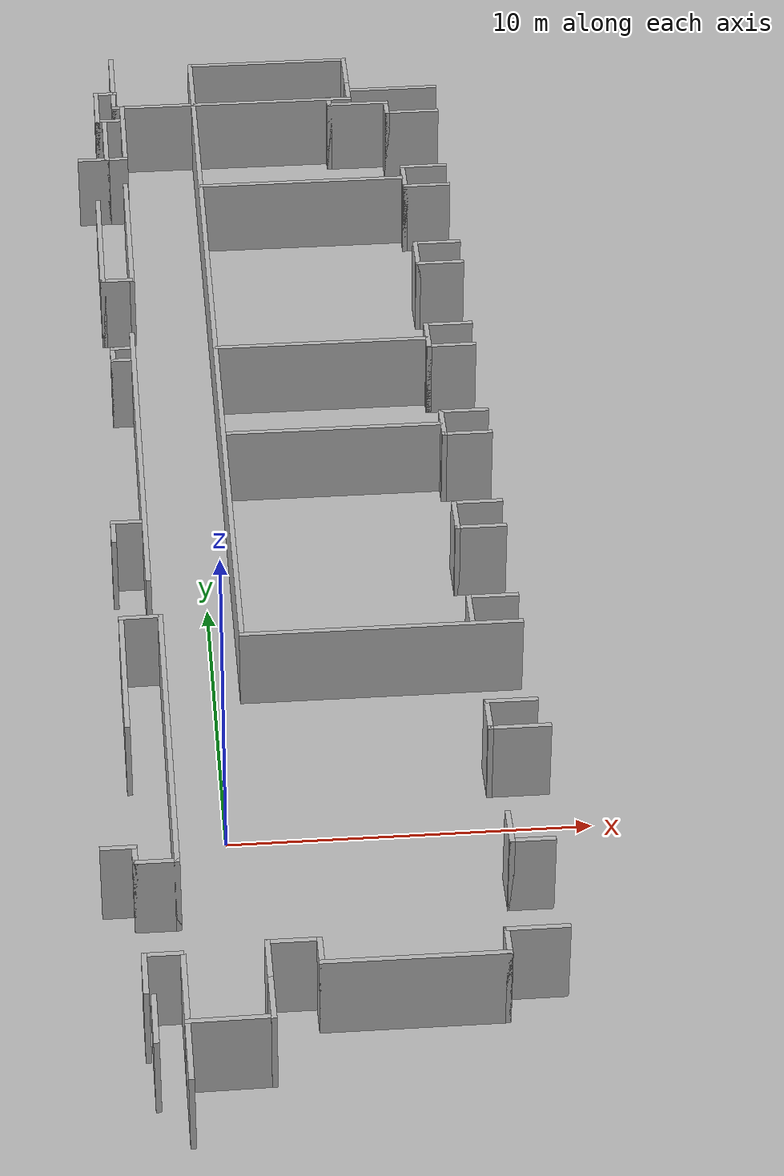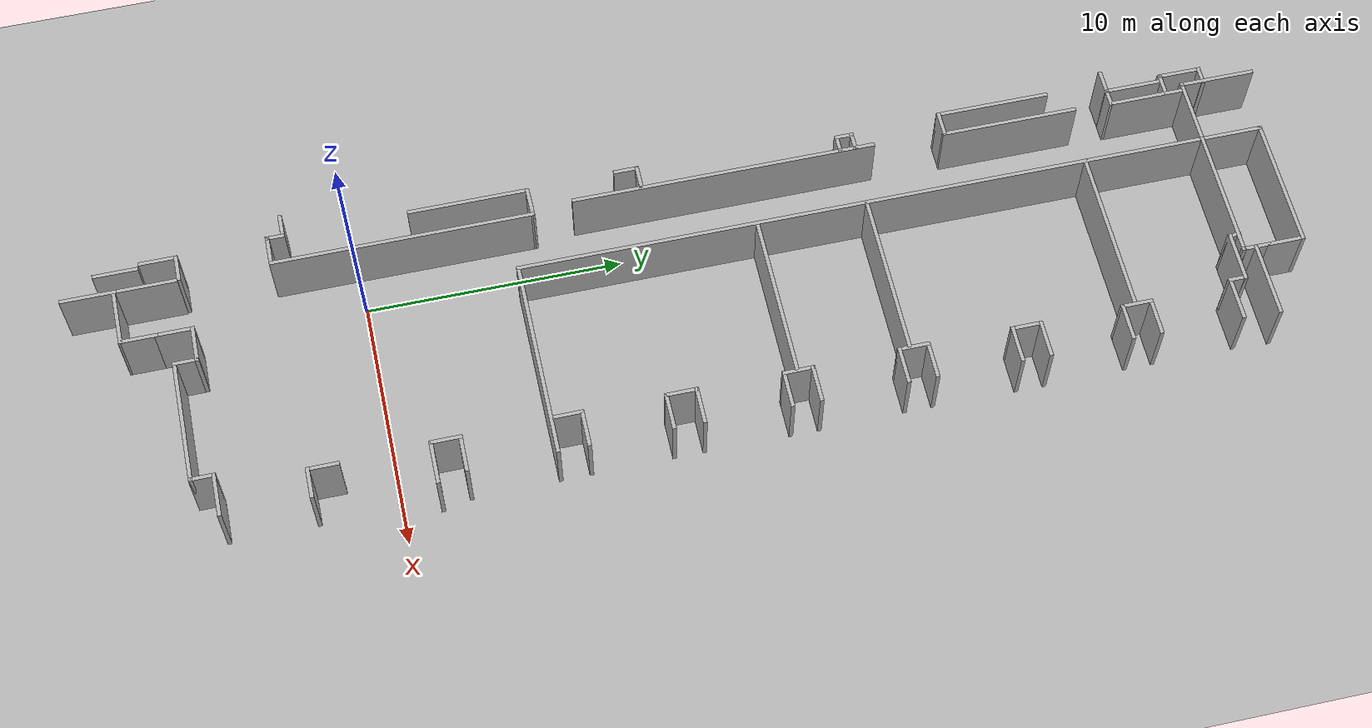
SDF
<sdf version="1.9">
 <world name="tsudanuma2-3">
  <model name="ground_plane">
   <static>true</static>
   <link name="link">
    <collision name="collision">
     <geometry><plane><normal>0 0 1</normal><size>100 100</size></plane></geometry>
     <surface>
      <contact><collide_bitmask>65535</collide_bitmask></contact>
      <friction><ode><mu>100</mu><mu2>50</mu2></ode></friction>
     </surface>
    </collision>
    <visual name="visual">
     <cast_shadows>false</cast_shadows>
     <geometry><plane><normal>0 0 1</normal><size>100 100</size></plane></geometry>
     <material>
      <ambient>0.5 0.5 0.5 1</ambient>
      <diffuse>0.7 0.7 0.7 1</diffuse>
      <specular>0.1 0.1 0.1 1</specular>
     </material>
    </visual>
   </link>
  </model>
  <model name="Tsudanuma_2-3-without_door">
   <pose>11.859500000000001 12.3796 0 0 0 0</pose>
   <link name="Wall_108">
    <collision name="Wall_108_Collision">
     <geometry><box><size>4.5 0.14999999999999999 2.5</size></box></geometry>
     <pose>0 0 1.25 0 0 0</pose>
    </collision>
    <visual name="Wall_108_Visual">
     <pose>0 0 1.25 0 0 0</pose>
     <geometry><box><size>4.5 0.14999999999999999 2.5</size></box></geometry>
     <material>
      <ambient>0.5 0.5 0.5 1</ambient>
      <diffuse>0.7 0.7 0.7 1</diffuse>
      <specular>0.1 0.1 0.1 1</specular>
     </material>
     <meta><layer>0</layer></meta>
    </visual>
    <pose>-14.370799999999999 13.091699999999999 0 0 0 -1.5708</pose>
   </link>
   <link name="Wall_109">
    <collision name="Wall_109_Collision">
     <geometry><box><size>1 0.14999999999999999 2.5</size></box></geometry>
     <pose>0 0 1.25 0 0 0</pose>
    </collision>
    <visual name="Wall_109_Visual">
     <pose>0 0 1.25 0 0 0</pose>
     <geometry><box><size>1 0.14999999999999999 2.5</size></box></geometry>
     <material>
      <ambient>0.5 0.5 0.5 1</ambient>
      <diffuse>0.7 0.7 0.7 1</diffuse>
      <specular>0.1 0.1 0.1 1</specular>
     </material>
     <meta><layer>0</layer></meta>
    </visual>
    <pose>-13.9458 10.916700000000001 0 0 0 0</pose>
   </link>
   <link name="Wall_112">
    <collision name="Wall_112_Collision">
     <geometry><box><size>5.4000000000000004 0.14999999999999999 2.5</size></box></geometry>
     <pose>0 0 1.25 0 0 0</pose>
    </collision>
    <visual name="Wall_112_Visual">
     <pose>0 0 1.25 0 0 0</pose>
     <geometry><box><size>5.4000000000000004 0.14999999999999999 2.5</size></box></geometry>
     <material>
      <ambient>0.5 0.5 0.5 1</ambient>
      <diffuse>0.7 0.7 0.7 1</diffuse>
      <specular>0.1 0.1 0.1 1</specular>
     </material>
     <meta><layer>0</layer></meta>
    </visual>
    <pose>-13.461399999999999 13.5404 0 0 0 -1.5708</pose>
   </link>
   <link name="Wall_122">
    <collision name="Wall_122_Collision">
     <geometry><box><size>12 0.14999999999999999 2.5</size></box></geometry>
     <pose>0 0 1.25 0 0 0</pose>
    </collision>
    <visual name="Wall_122_Visual">
     <pose>0 0 1.25 0 0 0</pose>
     <geometry><box><size>12 0.14999999999999999 2.5</size></box></geometry>
     <material>
      <ambient>0.5 0.5 0.5 1</ambient>
      <diffuse>0.7 0.7 0.7 1</diffuse>
      <specular>0.1 0.1 0.1 1</specular>
     </material>
     <meta><layer>0</layer></meta>
    </visual>
    <pose>-13.571099999999999 2.1181399999999999 0 0 0 1.5708</pose>
   </link>
   <link name="Wall_13">
    <collision name="Wall_13_Collision">
     <geometry><box><size>1.5 0.14999999999999999 2.5</size></box></geometry>
     <pose>0 0 1.25 0 0 0</pose>
    </collision>
    <visual name="Wall_13_Visual">
     <pose>0 0 1.25 0 0 0</pose>
     <geometry><box><size>1.5 0.14999999999999999 2.5</size></box></geometry>
     <material>
      <ambient>0.5 0.5 0.5 1</ambient>
      <diffuse>0.7 0.7 0.7 1</diffuse>
      <specular>0.1 0.1 0.1 1</specular>
     </material>
     <meta><layer>0</layer></meta>
    </visual>
    <pose>-5.9720599999999999 22.335000000000001 0 0 0 1.5708</pose>
   </link>
   <link name="Wall_135">
    <collision name="Wall_135_Collision">
     <geometry><box><size>1 0.14999999999999999 2.5</size></box></geometry>
     <pose>0 0 1.25 0 0 0</pose>
    </collision>
    <visual name="Wall_135_Visual">
     <pose>0 0 1.25 0 0 0</pose>
     <geometry><box><size>1 0.14999999999999999 2.5</size></box></geometry>
     <material>
      <ambient>0.5 0.5 0.5 1</ambient>
      <diffuse>0.7 0.7 0.7 1</diffuse>
      <specular>0.1 0.1 0.1 1</specular>
     </material>
     <meta><layer>0</layer></meta>
    </visual>
    <pose>-14.4819 -1.5683800000000001 0 0 0 1.5708</pose>
   </link>
   <link name="Wall_136">
    <collision name="Wall_136_Collision">
     <geometry><box><size>1 0.14999999999999999 2.5</size></box></geometry>
     <pose>0 0 1.25 0 0 0</pose>
    </collision>
    <visual name="Wall_136_Visual">
     <pose>0 0 1.25 0 0 0</pose>
     <geometry><box><size>1 0.14999999999999999 2.5</size></box></geometry>
     <material>
      <ambient>0.5 0.5 0.5 1</ambient>
      <diffuse>0.7 0.7 0.7 1</diffuse>
      <specular>0.1 0.1 0.1 1</specular>
     </material>
     <meta><layer>0</layer></meta>
    </visual>
    <pose>-14.056900000000001 -1.1433800000000001 0 0 0 0</pose>
   </link>
   <link name="Wall_14">
    <collision name="Wall_14_Collision">
     <geometry><box><size>5.25 0.14999999999999999 2.5</size></box></geometry>
     <pose>0 0 1.25 0 0 0</pose>
    </collision>
    <visual name="Wall_14_Visual">
     <pose>0 0 1.25 0 0 0</pose>
     <geometry><box><size>5.25 0.14999999999999999 2.5</size></box></geometry>
     <material>
      <ambient>0.5 0.5 0.5 1</ambient>
      <diffuse>0.7 0.7 0.7 1</diffuse>
      <specular>0.1 0.1 0.1 1</specular>
     </material>
     <meta><layer>0</layer></meta>
    </visual>
    <pose>-8.5220599999999997 23.010000000000002 0 0 0 3.1415899999999999</pose>
   </link>
   <link name="Wall_15">
    <collision name="Wall_15_Collision">
     <geometry><box><size>2.5 0.14999999999999999 2.5</size></box></geometry>
     <pose>0 0 1.25 0 0 0</pose>
    </collision>
    <visual name="Wall_15_Visual">
     <pose>0 0 1.25 0 0 0</pose>
     <geometry><box><size>2.5 0.14999999999999999 2.5</size></box></geometry>
     <material>
      <ambient>0.5 0.5 0.5 1</ambient>
      <diffuse>0.7 0.7 0.7 1</diffuse>
      <specular>0.1 0.1 0.1 1</specular>
     </material>
     <meta><layer>0</layer></meta>
    </visual>
    <pose>-11.072100000000001 21.835000000000001 0 0 0 -1.5708</pose>
   </link>
   <link name="Wall_154">
    <collision name="Wall_154_Collision">
     <geometry><box><size>1 0.14999999999999999 2.5</size></box></geometry>
     <pose>0 0 1.25 0 0 0</pose>
    </collision>
    <visual name="Wall_154_Visual">
     <pose>0 0 1.25 0 0 0</pose>
     <geometry><box><size>1 0.14999999999999999 2.5</size></box></geometry>
     <material>
      <ambient>0.5 0.5 0.5 1</ambient>
      <diffuse>0.7 0.7 0.7 1</diffuse>
      <specular>0.1 0.1 0.1 1</specular>
     </material>
     <meta><layer>0</layer></meta>
    </visual>
    <pose>-14.8324 -14.957700000000001 0 0 0 0</pose>
   </link>
   <link name="Wall_155">
    <collision name="Wall_155_Collision">
     <geometry><box><size>0.75 0.14999999999999999 2.5</size></box></geometry>
     <pose>0 0 1.25 0 0 0</pose>
    </collision>
    <visual name="Wall_155_Visual">
     <pose>0 0 1.25 0 0 0</pose>
     <geometry><box><size>0.75 0.14999999999999999 2.5</size></box></geometry>
     <material>
      <ambient>0.5 0.5 0.5 1</ambient>
      <diffuse>0.7 0.7 0.7 1</diffuse>
      <specular>0.1 0.1 0.1 1</specular>
     </material>
     <meta><layer>0</layer></meta>
    </visual>
    <pose>-14.407400000000001 -15.2577 0 0 0 -1.5708</pose>
   </link>
   <link name="Wall_156">
    <collision name="Wall_156_Collision">
     <geometry><box><size>1.25 0.14999999999999999 2.5</size></box></geometry>
     <pose>0 0 1.25 0 0 0</pose>
    </collision>
    <visual name="Wall_156_Visual">
     <pose>0 0 1.25 0 0 0</pose>
     <geometry><box><size>1.25 0.14999999999999999 2.5</size></box></geometry>
     <material>
      <ambient>0.5 0.5 0.5 1</ambient>
      <diffuse>0.7 0.7 0.7 1</diffuse>
      <specular>0.1 0.1 0.1 1</specular>
     </material>
     <meta><layer>0</layer></meta>
    </visual>
    <pose>-13.8574 -15.557700000000001 0 0 0 0</pose>
   </link>
   <link name="Wall_157">
    <collision name="Wall_157_Collision">
     <geometry><box><size>10.25 0.14999999999999999 2.5</size></box></geometry>
     <pose>0 0 1.25 0 0 0</pose>
    </collision>
    <visual name="Wall_157_Visual">
     <pose>0 0 1.25 0 0 0</pose>
     <geometry><box><size>10.25 0.14999999999999999 2.5</size></box></geometry>
     <material>
      <ambient>0.5 0.5 0.5 1</ambient>
      <diffuse>0.7 0.7 0.7 1</diffuse>
      <specular>0.1 0.1 0.1 1</specular>
     </material>
     <meta><layer>0</layer></meta>
    </visual>
    <pose>-13.307399999999999 -10.5077 0 0 0 1.5708</pose>
   </link>
   <link name="Wall_158">
    <collision name="Wall_158_Collision">
     <geometry><box><size>1.25 0.14999999999999999 2.5</size></box></geometry>
     <pose>0 0 1.25 0 0 0</pose>
    </collision>
    <visual name="Wall_158_Visual">
     <pose>0 0 1.25 0 0 0</pose>
     <geometry><box><size>1.25 0.14999999999999999 2.5</size></box></geometry>
     <material>
      <ambient>0.5 0.5 0.5 1</ambient>
      <diffuse>0.7 0.7 0.7 1</diffuse>
      <specular>0.1 0.1 0.1 1</specular>
     </material>
     <meta><layer>0</layer></meta>
    </visual>
    <pose>-13.8574 -5.4671000000000003 0 0 0 -3.1244499999999999</pose>
   </link>
   <link name="Wall_16">
    <collision name="Wall_16_Collision">
     <geometry><box><size>2.75 0.14999999999999999 2.5</size></box></geometry>
     <pose>0 0 1.25 0 0 0</pose>
    </collision>
    <visual name="Wall_16_Visual">
     <pose>0 0 1.25 0 0 0</pose>
     <geometry><box><size>2.75 0.14999999999999999 2.5</size></box></geometry>
     <material>
      <ambient>0.5 0.5 0.5 1</ambient>
      <diffuse>0.7 0.7 0.7 1</diffuse>
      <specular>0.1 0.1 0.1 1</specular>
     </material>
     <meta><layer>0</layer></meta>
    </visual>
    <pose>-12.3721 20.66 0 0 0 3.1415899999999999</pose>
   </link>
   <link name="Wall_163">
    <collision name="Wall_163_Collision">
     <geometry><box><size>4.75 0.14999999999999999 2.5</size></box></geometry>
     <pose>0 0 1.25 0 0 0</pose>
    </collision>
    <visual name="Wall_163_Visual">
     <pose>0 0 1.25 0 0 0</pose>
     <geometry><box><size>4.75 0.14999999999999999 2.5</size></box></geometry>
     <material>
      <ambient>0.5 0.5 0.5 1</ambient>
      <diffuse>0.7 0.7 0.7 1</diffuse>
      <specular>0.1 0.1 0.1 1</specular>
     </material>
     <meta><layer>0</layer></meta>
    </visual>
    <pose>-14.407400000000001 -7.7765399999999998 0 0 0 -1.5708</pose>
   </link>
   <link name="Wall_17">
    <collision name="Wall_17_Collision">
     <geometry><box><size>3 0.14999999999999999 2.5</size></box></geometry>
     <pose>0 0 1.25 0 0 0</pose>
    </collision>
    <visual name="Wall_17_Visual">
     <pose>0 0 1.25 0 0 0</pose>
     <geometry><box><size>3 0.14999999999999999 2.5</size></box></geometry>
     <material>
      <ambient>0.5 0.5 0.5 1</ambient>
      <diffuse>0.7 0.7 0.7 1</diffuse>
      <specular>0.1 0.1 0.1 1</specular>
     </material>
     <meta><layer>0</layer></meta>
    </visual>
    <pose>-13.6721 22.085000000000001 0 0 0 1.5708</pose>
   </link>
   <link name="Wall_171">
    <collision name="Wall_171_Collision">
     <geometry><box><size>6.5 0.14999999999999999 2.5</size></box></geometry>
     <pose>0 0 1.25 0 0 0</pose>
    </collision>
    <visual name="Wall_171_Visual">
     <pose>0 0 1.25 0 0 0</pose>
     <geometry><box><size>6.5 0.14999999999999999 2.5</size></box></geometry>
     <material>
      <ambient>0.5 0.5 0.5 1</ambient>
      <diffuse>0.7 0.7 0.7 1</diffuse>
      <specular>0.1 0.1 0.1 1</specular>
     </material>
     <meta><layer>0</layer></meta>
    </visual>
    <pose>-7.8449200000000001 7.16554 0 0 0 0</pose>
   </link>
   <link name="Wall_173">
    <collision name="Wall_173_Collision">
     <geometry><box><size>6.5 0.14999999999999999 2.5</size></box></geometry>
     <pose>0 0 1.25 0 0 0</pose>
    </collision>
    <visual name="Wall_173_Visual">
     <pose>0 0 1.25 0 0 0</pose>
     <geometry><box><size>6.5 0.14999999999999999 2.5</size></box></geometry>
     <material>
      <ambient>0.5 0.5 0.5 1</ambient>
      <diffuse>0.7 0.7 0.7 1</diffuse>
      <specular>0.1 0.1 0.1 1</specular>
     </material>
     <meta><layer>0</layer></meta>
    </visual>
    <pose>-7.8185599999999997 2.8487499999999999 0 0 0 0</pose>
   </link>
   <link name="Wall_188">
    <collision name="Wall_188_Collision">
     <geometry><box><size>1.5 0.14999999999999999 2.5</size></box></geometry>
     <pose>0 0 1.25 0 0 0</pose>
    </collision>
    <visual name="Wall_188_Visual">
     <pose>0 0 1.25 0 0 0</pose>
     <geometry><box><size>1.5 0.14999999999999999 2.5</size></box></geometry>
     <material>
      <ambient>0.5 0.5 0.5 1</ambient>
      <diffuse>0.7 0.7 0.7 1</diffuse>
      <specular>0.1 0.1 0.1 1</specular>
     </material>
     <meta><layer>0</layer></meta>
    </visual>
    <pose>-14.322100000000001 -19.734999999999999 0 0 0 1.5708</pose>
   </link>
   <link name="Wall_189">
    <collision name="Wall_189_Collision">
     <geometry><box><size>1.1000000000000001 0.14999999999999999 2.5</size></box></geometry>
     <pose>0 0 1.25 0 0 0</pose>
    </collision>
    <visual name="Wall_189_Visual">
     <pose>0 0 1.25 0 0 0</pose>
     <geometry><box><size>1.1000000000000001 0.14999999999999999 2.5</size></box></geometry>
     <material>
      <ambient>0.5 0.5 0.5 1</ambient>
      <diffuse>0.7 0.7 0.7 1</diffuse>
      <specular>0.1 0.1 0.1 1</specular>
     </material>
     <meta><layer>0</layer></meta>
    </visual>
    <pose>-13.847099999999999 -19.059999999999999 0 0 0 0</pose>
   </link>
   <link name="Wall_192">
    <collision name="Wall_192_Collision">
     <geometry><box><size>2.5 0.14999999999999999 2.5</size></box></geometry>
     <pose>0 0 1.25 0 0 0</pose>
    </collision>
    <visual name="Wall_192_Visual">
     <pose>0 0 1.25 0 0 0</pose>
     <geometry><box><size>2.5 0.14999999999999999 2.5</size></box></geometry>
     <material>
      <ambient>0.5 0.5 0.5 1</ambient>
      <diffuse>0.7 0.7 0.7 1</diffuse>
      <specular>0.1 0.1 0.1 1</specular>
     </material>
     <meta><layer>0</layer></meta>
    </visual>
    <pose>-13.322100000000001 -20.364999999999998 0 0 0 1.5708</pose>
   </link>
   <link name="Wall_194">
    <collision name="Wall_194_Collision">
     <geometry><box><size>1.5 0.14999999999999999 2.5</size></box></geometry>
     <pose>0 0 1.25 0 0 0</pose>
    </collision>
    <visual name="Wall_194_Visual">
     <pose>0 0 1.25 0 0 0</pose>
     <geometry><box><size>1.5 0.14999999999999999 2.5</size></box></geometry>
     <material>
      <ambient>0.5 0.5 0.5 1</ambient>
      <diffuse>0.7 0.7 0.7 1</diffuse>
      <specular>0.1 0.1 0.1 1</specular>
     </material>
     <meta><layer>0</layer></meta>
    </visual>
    <pose>-11.1311 -19.488499999999998 0 0 0 1.5708</pose>
   </link>
   <link name="Wall_195">
    <collision name="Wall_195_Collision">
     <geometry><box><size>1.5 0.14999999999999999 2.5</size></box></geometry>
     <pose>0 0 1.25 0 0 0</pose>
    </collision>
    <visual name="Wall_195_Visual">
     <pose>0 0 1.25 0 0 0</pose>
     <geometry><box><size>1.5 0.14999999999999999 2.5</size></box></geometry>
     <material>
      <ambient>0.5 0.5 0.5 1</ambient>
      <diffuse>0.7 0.7 0.7 1</diffuse>
      <specular>0.1 0.1 0.1 1</specular>
     </material>
     <meta><layer>0</layer></meta>
    </visual>
    <pose>-10.456099999999999 -18.813500000000001 0 0 0 0</pose>
   </link>
   <link name="Wall_196">
    <collision name="Wall_196_Collision">
     <geometry><box><size>1 0.14999999999999999 2.5</size></box></geometry>
     <pose>0 0 1.25 0 0 0</pose>
    </collision>
    <visual name="Wall_196_Visual">
     <pose>0 0 1.25 0 0 0</pose>
     <geometry><box><size>1 0.14999999999999999 2.5</size></box></geometry>
     <material>
      <ambient>0.5 0.5 0.5 1</ambient>
      <diffuse>0.7 0.7 0.7 1</diffuse>
      <specular>0.1 0.1 0.1 1</specular>
     </material>
     <meta><layer>0</layer></meta>
    </visual>
    <pose>-9.7811199999999996 -19.238499999999998 0 0 0 -1.5708</pose>
   </link>
   <link name="Wall_197">
    <collision name="Wall_197_Collision">
     <geometry><box><size>5 0.14999999999999999 2.5</size></box></geometry>
     <pose>0 0 1.25 0 0 0</pose>
    </collision>
    <visual name="Wall_197_Visual">
     <pose>0 0 1.25 0 0 0</pose>
     <geometry><box><size>5 0.14999999999999999 2.5</size></box></geometry>
     <material>
      <ambient>0.5 0.5 0.5 1</ambient>
      <diffuse>0.7 0.7 0.7 1</diffuse>
      <specular>0.1 0.1 0.1 1</specular>
     </material>
     <meta><layer>0</layer></meta>
    </visual>
    <pose>-7.3561199999999998 -19.663499999999999 0 0 0 0</pose>
   </link>
   <link name="Wall_198">
    <collision name="Wall_198_Collision">
     <geometry><box><size>1 0.14999999999999999 2.5</size></box></geometry>
     <pose>0 0 1.25 0 0 0</pose>
    </collision>
    <visual name="Wall_198_Visual">
     <pose>0 0 1.25 0 0 0</pose>
     <geometry><box><size>1 0.14999999999999999 2.5</size></box></geometry>
     <material>
      <ambient>0.5 0.5 0.5 1</ambient>
      <diffuse>0.7 0.7 0.7 1</diffuse>
      <specular>0.1 0.1 0.1 1</specular>
     </material>
     <meta><layer>0</layer></meta>
    </visual>
    <pose>-4.9311199999999999 -19.238499999999998 0 0 0 1.5708</pose>
   </link>
   <link name="Wall_199">
    <collision name="Wall_199_Collision">
     <geometry><box><size>1.75 0.14999999999999999 2.5</size></box></geometry>
     <pose>0 0 1.25 0 0 0</pose>
    </collision>
    <visual name="Wall_199_Visual">
     <pose>0 0 1.25 0 0 0</pose>
     <geometry><box><size>1.75 0.14999999999999999 2.5</size></box></geometry>
     <material>
      <ambient>0.5 0.5 0.5 1</ambient>
      <diffuse>0.7 0.7 0.7 1</diffuse>
      <specular>0.1 0.1 0.1 1</specular>
     </material>
     <meta><layer>0</layer></meta>
    </visual>
    <pose>-4.1311200000000001 -18.813500000000001 0 0 0 0</pose>
   </link>
   <link name="Wall_201">
    <collision name="Wall_201_Collision">
     <geometry><box><size>1.25 0.14999999999999999 2.5</size></box></geometry>
     <pose>0 0 1.25 0 0 0</pose>
    </collision>
    <visual name="Wall_201_Visual">
     <pose>0 0 1.25 0 0 0</pose>
     <geometry><box><size>1.25 0.14999999999999999 2.5</size></box></geometry>
     <material>
      <ambient>0.5 0.5 0.5 1</ambient>
      <diffuse>0.7 0.7 0.7 1</diffuse>
      <specular>0.1 0.1 0.1 1</specular>
     </material>
     <meta><layer>0</layer></meta>
    </visual>
    <pose>-3.8811200000000001 -15.4635 0 0 0 3.1415899999999999</pose>
   </link>
   <link name="Wall_202">
    <collision name="Wall_202_Collision">
     <geometry><box><size>1.25 0.14999999999999999 2.5</size></box></geometry>
     <pose>0 0 1.25 0 0 0</pose>
    </collision>
    <visual name="Wall_202_Visual">
     <pose>0 0 1.25 0 0 0</pose>
     <geometry><box><size>1.25 0.14999999999999999 2.5</size></box></geometry>
     <material>
      <ambient>0.5 0.5 0.5 1</ambient>
      <diffuse>0.7 0.7 0.7 1</diffuse>
      <specular>0.1 0.1 0.1 1</specular>
     </material>
     <meta><layer>0</layer></meta>
    </visual>
    <pose>-4.4311199999999999 -14.913500000000001 0 0 0 1.5708</pose>
   </link>
   <link name="Wall_395">
    <collision name="Wall_395_Collision">
     <geometry><box><size>1.75 0.14999999999999999 2.5</size></box></geometry>
     <pose>0 0 1.25 0 0 0</pose>
    </collision>
    <visual name="Wall_395_Visual">
     <pose>0 0 1.25 0 0 0</pose>
     <geometry><box><size>1.75 0.14999999999999999 2.5</size></box></geometry>
     <material>
      <ambient>0.5 0.5 0.5 1</ambient>
      <diffuse>0.7 0.7 0.7 1</diffuse>
      <specular>0.1 0.1 0.1 1</specular>
     </material>
     <meta><layer>0</layer></meta>
    </visual>
    <pose>-3.7356099999999999 -10.9154 0 0 0 3.1415899999999999</pose>
   </link>
   <link name="Wall_396">
    <collision name="Wall_396_Collision">
     <geometry><box><size>1.25 0.14999999999999999 2.5</size></box></geometry>
     <pose>0 0 1.25 0 0 0</pose>
    </collision>
    <visual name="Wall_396_Visual">
     <pose>0 0 1.25 0 0 0</pose>
     <geometry><box><size>1.25 0.14999999999999999 2.5</size></box></geometry>
     <material>
      <ambient>0.5 0.5 0.5 1</ambient>
      <diffuse>0.7 0.7 0.7 1</diffuse>
      <specular>0.1 0.1 0.1 1</specular>
     </material>
     <meta><layer>0</layer></meta>
    </visual>
    <pose>-4.5356100000000001 -10.365399999999999 0 0 0 1.5708</pose>
   </link>
   <link name="Wall_397">
    <collision name="Wall_397_Collision">
     <geometry><box><size>1.5 0.14999999999999999 2.5</size></box></geometry>
     <pose>0 0 1.25 0 0 0</pose>
    </collision>
    <visual name="Wall_397_Visual">
     <pose>0 0 1.25 0 0 0</pose>
     <geometry><box><size>1.5 0.14999999999999999 2.5</size></box></geometry>
     <material>
      <ambient>0.5 0.5 0.5 1</ambient>
      <diffuse>0.7 0.7 0.7 1</diffuse>
      <specular>0.1 0.1 0.1 1</specular>
     </material>
     <meta><layer>0</layer></meta>
    </visual>
    <pose>-3.8606099999999999 -9.8153500000000005 0 0 0 0</pose>
   </link>
   <link name="Wall_427">
    <collision name="Wall_427_Collision">
     <geometry><box><size>1.25 0.14999999999999999 2.5</size></box></geometry>
     <pose>0 0 1.25 0 0 0</pose>
    </collision>
    <visual name="Wall_427_Visual">
     <pose>0 0 1.25 0 0 0</pose>
     <geometry><box><size>1.25 0.14999999999999999 2.5</size></box></geometry>
     <material>
      <ambient>0.5 0.5 0.5 1</ambient>
      <diffuse>0.7 0.7 0.7 1</diffuse>
      <specular>0.1 0.1 0.1 1</specular>
     </material>
     <meta><layer>0</layer></meta>
    </visual>
    <pose>-4.5802100000000001 -5.8238799999999999 0 0 0 1.5708</pose>
   </link>
   <link name="Wall_428">
    <collision name="Wall_428_Collision">
     <geometry><box><size>1.5 0.14999999999999999 2.5</size></box></geometry>
     <pose>0 0 1.25 0 0 0</pose>
    </collision>
    <visual name="Wall_428_Visual">
     <pose>0 0 1.25 0 0 0</pose>
     <geometry><box><size>1.5 0.14999999999999999 2.5</size></box></geometry>
     <material>
      <ambient>0.5 0.5 0.5 1</ambient>
      <diffuse>0.7 0.7 0.7 1</diffuse>
      <specular>0.1 0.1 0.1 1</specular>
     </material>
     <meta><layer>0</layer></meta>
    </visual>
    <pose>-3.9052099999999998 -5.2738800000000001 0 0 0 0</pose>
   </link>
   <link name="Wall_430">
    <collision name="Wall_430_Collision">
     <geometry><box><size>1.5 0.14999999999999999 2.5</size></box></geometry>
     <pose>0 0 1.25 0 0 0</pose>
    </collision>
    <visual name="Wall_430_Visual">
     <pose>0 0 1.25 0 0 0</pose>
     <geometry><box><size>1.5 0.14999999999999999 2.5</size></box></geometry>
     <material>
      <ambient>0.5 0.5 0.5 1</ambient>
      <diffuse>0.7 0.7 0.7 1</diffuse>
      <specular>0.1 0.1 0.1 1</specular>
     </material>
     <meta><layer>0</layer></meta>
    </visual>
    <pose>-3.9103300000000001 -2.1101399999999999 0 0 0 3.1415899999999999</pose>
   </link>
   <link name="Wall_431">
    <collision name="Wall_431_Collision">
     <geometry><box><size>1.3 0.14999999999999999 2.5</size></box></geometry>
     <pose>0 0 1.25 0 0 0</pose>
    </collision>
    <visual name="Wall_431_Visual">
     <pose>0 0 1.25 0 0 0</pose>
     <geometry><box><size>1.3 0.14999999999999999 2.5</size></box></geometry>
     <material>
      <ambient>0.5 0.5 0.5 1</ambient>
      <diffuse>0.7 0.7 0.7 1</diffuse>
      <specular>0.1 0.1 0.1 1</specular>
     </material>
     <meta><layer>0</layer></meta>
    </visual>
    <pose>-4.5853299999999999 -1.5351399999999999 0 0 0 1.5708</pose>
   </link>
   <link name="Wall_433">
    <collision name="Wall_433_Collision">
     <geometry><box><size>1.5 0.14999999999999999 2.5</size></box></geometry>
     <pose>0 0 1.25 0 0 0</pose>
    </collision>
    <visual name="Wall_433_Visual">
     <pose>0 0 1.25 0 0 0</pose>
     <geometry><box><size>1.5 0.14999999999999999 2.5</size></box></geometry>
     <material>
      <ambient>0.5 0.5 0.5 1</ambient>
      <diffuse>0.7 0.7 0.7 1</diffuse>
      <specular>0.1 0.1 0.1 1</specular>
     </material>
     <meta><layer>0</layer></meta>
    </visual>
    <pose>-3.9103300000000001 -0.96013800000000005 0 0 0 0</pose>
   </link>
   <link name="Wall_435">
    <collision name="Wall_435_Collision">
     <geometry><box><size>1.5 0.14999999999999999 2.5</size></box></geometry>
     <pose>0 0 1.25 0 0 0</pose>
    </collision>
    <visual name="Wall_435_Visual">
     <pose>0 0 1.25 0 0 0</pose>
     <geometry><box><size>1.5 0.14999999999999999 2.5</size></box></geometry>
     <material>
      <ambient>0.5 0.5 0.5 1</ambient>
      <diffuse>0.7 0.7 0.7 1</diffuse>
      <specular>0.1 0.1 0.1 1</specular>
     </material>
     <meta><layer>0</layer></meta>
    </visual>
    <pose>-3.8715299999999999 2.3408000000000002 0 0 0 3.1415899999999999</pose>
   </link>
   <link name="Wall_436">
    <collision name="Wall_436_Collision">
     <geometry><box><size>1.25 0.14999999999999999 2.5</size></box></geometry>
     <pose>0 0 1.25 0 0 0</pose>
    </collision>
    <visual name="Wall_436_Visual">
     <pose>0 0 1.25 0 0 0</pose>
     <geometry><box><size>1.25 0.14999999999999999 2.5</size></box></geometry>
     <material>
      <ambient>0.5 0.5 0.5 1</ambient>
      <diffuse>0.7 0.7 0.7 1</diffuse>
      <specular>0.1 0.1 0.1 1</specular>
     </material>
     <meta><layer>0</layer></meta>
    </visual>
    <pose>-4.5465299999999997 2.8908 0 0 0 1.5708</pose>
   </link>
   <link name="Wall_437">
    <collision name="Wall_437_Collision">
     <geometry><box><size>1.5 0.14999999999999999 2.5</size></box></geometry>
     <pose>0 0 1.25 0 0 0</pose>
    </collision>
    <visual name="Wall_437_Visual">
     <pose>0 0 1.25 0 0 0</pose>
     <geometry><box><size>1.5 0.14999999999999999 2.5</size></box></geometry>
     <material>
      <ambient>0.5 0.5 0.5 1</ambient>
      <diffuse>0.7 0.7 0.7 1</diffuse>
      <specular>0.1 0.1 0.1 1</specular>
     </material>
     <meta><layer>0</layer></meta>
    </visual>
    <pose>-3.8715299999999999 3.4407999999999999 0 0 0 0</pose>
   </link>
   <link name="Wall_439">
    <collision name="Wall_439_Collision">
     <geometry><box><size>1.5 0.14999999999999999 2.5</size></box></geometry>
     <pose>0 0 1.25 0 0 0</pose>
    </collision>
    <visual name="Wall_439_Visual">
     <pose>0 0 1.25 0 0 0</pose>
     <geometry><box><size>1.5 0.14999999999999999 2.5</size></box></geometry>
     <material>
      <ambient>0.5 0.5 0.5 1</ambient>
      <diffuse>0.7 0.7 0.7 1</diffuse>
      <specular>0.1 0.1 0.1 1</specular>
     </material>
     <meta><layer>0</layer></meta>
    </visual>
    <pose>-3.9177900000000001 6.7677300000000002 0 0 0 3.1415899999999999</pose>
   </link>
   <link name="Wall_440">
    <collision name="Wall_440_Collision">
     <geometry><box><size>1.25 0.14999999999999999 2.5</size></box></geometry>
     <pose>0 0 1.25 0 0 0</pose>
    </collision>
    <visual name="Wall_440_Visual">
     <pose>0 0 1.25 0 0 0</pose>
     <geometry><box><size>1.25 0.14999999999999999 2.5</size></box></geometry>
     <material>
      <ambient>0.5 0.5 0.5 1</ambient>
      <diffuse>0.7 0.7 0.7 1</diffuse>
      <specular>0.1 0.1 0.1 1</specular>
     </material>
     <meta><layer>0</layer></meta>
    </visual>
    <pose>-4.5927899999999999 7.3177300000000001 0 0 0 1.5708</pose>
   </link>
   <link name="Wall_441">
    <collision name="Wall_441_Collision">
     <geometry><box><size>1.5 0.14999999999999999 2.5</size></box></geometry>
     <pose>0 0 1.25 0 0 0</pose>
    </collision>
    <visual name="Wall_441_Visual">
     <pose>0 0 1.25 0 0 0</pose>
     <geometry><box><size>1.5 0.14999999999999999 2.5</size></box></geometry>
     <material>
      <ambient>0.5 0.5 0.5 1</ambient>
      <diffuse>0.7 0.7 0.7 1</diffuse>
      <specular>0.1 0.1 0.1 1</specular>
     </material>
     <meta><layer>0</layer></meta>
    </visual>
    <pose>-3.9177900000000001 7.8677299999999999 0 0 0 0</pose>
   </link>
   <link name="Wall_443">
    <collision name="Wall_443_Collision">
     <geometry><box><size>1.5 0.14999999999999999 2.5</size></box></geometry>
     <pose>0 0 1.25 0 0 0</pose>
    </collision>
    <visual name="Wall_443_Visual">
     <pose>0 0 1.25 0 0 0</pose>
     <geometry><box><size>1.5 0.14999999999999999 2.5</size></box></geometry>
     <material>
      <ambient>0.5 0.5 0.5 1</ambient>
      <diffuse>0.7 0.7 0.7 1</diffuse>
      <specular>0.1 0.1 0.1 1</specular>
     </material>
     <meta><layer>0</layer></meta>
    </visual>
    <pose>-3.8623599999999998 11.1244 0 0 0 3.1415899999999999</pose>
   </link>
   <link name="Wall_444">
    <collision name="Wall_444_Collision">
     <geometry><box><size>1.25 0.14999999999999999 2.5</size></box></geometry>
     <pose>0 0 1.25 0 0 0</pose>
    </collision>
    <visual name="Wall_444_Visual">
     <pose>0 0 1.25 0 0 0</pose>
     <geometry><box><size>1.25 0.14999999999999999 2.5</size></box></geometry>
     <material>
      <ambient>0.5 0.5 0.5 1</ambient>
      <diffuse>0.7 0.7 0.7 1</diffuse>
      <specular>0.1 0.1 0.1 1</specular>
     </material>
     <meta><layer>0</layer></meta>
    </visual>
    <pose>-4.5373599999999996 11.6744 0 0 0 1.5708</pose>
   </link>
   <link name="Wall_445">
    <collision name="Wall_445_Collision">
     <geometry><box><size>1.5 0.14999999999999999 2.5</size></box></geometry>
     <pose>0 0 1.25 0 0 0</pose>
    </collision>
    <visual name="Wall_445_Visual">
     <pose>0 0 1.25 0 0 0</pose>
     <geometry><box><size>1.5 0.14999999999999999 2.5</size></box></geometry>
     <material>
      <ambient>0.5 0.5 0.5 1</ambient>
      <diffuse>0.7 0.7 0.7 1</diffuse>
      <specular>0.1 0.1 0.1 1</specular>
     </material>
     <meta><layer>0</layer></meta>
    </visual>
    <pose>-3.8623599999999998 12.224399999999999 0 0 0 0</pose>
   </link>
   <link name="Wall_447">
    <collision name="Wall_447_Collision">
     <geometry><box><size>1.5 0.14999999999999999 2.5</size></box></geometry>
     <pose>0 0 1.25 0 0 0</pose>
    </collision>
    <visual name="Wall_447_Visual">
     <pose>0 0 1.25 0 0 0</pose>
     <geometry><box><size>1.5 0.14999999999999999 2.5</size></box></geometry>
     <material>
      <ambient>0.5 0.5 0.5 1</ambient>
      <diffuse>0.7 0.7 0.7 1</diffuse>
      <specular>0.1 0.1 0.1 1</specular>
     </material>
     <meta><layer>0</layer></meta>
    </visual>
    <pose>-3.8885999999999998 15.425599999999999 0 0 0 3.1415899999999999</pose>
   </link>
   <link name="Wall_448">
    <collision name="Wall_448_Collision">
     <geometry><box><size>1.25 0.14999999999999999 2.5</size></box></geometry>
     <pose>0 0 1.25 0 0 0</pose>
    </collision>
    <visual name="Wall_448_Visual">
     <pose>0 0 1.25 0 0 0</pose>
     <geometry><box><size>1.25 0.14999999999999999 2.5</size></box></geometry>
     <material>
      <ambient>0.5 0.5 0.5 1</ambient>
      <diffuse>0.7 0.7 0.7 1</diffuse>
      <specular>0.1 0.1 0.1 1</specular>
     </material>
     <meta><layer>0</layer></meta>
    </visual>
    <pose>-4.5636000000000001 15.9756 0 0 0 1.5708</pose>
   </link>
   <link name="Wall_449">
    <collision name="Wall_449_Collision">
     <geometry><box><size>1.5 0.14999999999999999 2.5</size></box></geometry>
     <pose>0 0 1.25 0 0 0</pose>
    </collision>
    <visual name="Wall_449_Visual">
     <pose>0 0 1.25 0 0 0</pose>
     <geometry><box><size>1.5 0.14999999999999999 2.5</size></box></geometry>
     <material>
      <ambient>0.5 0.5 0.5 1</ambient>
      <diffuse>0.7 0.7 0.7 1</diffuse>
      <specular>0.1 0.1 0.1 1</specular>
     </material>
     <meta><layer>0</layer></meta>
    </visual>
    <pose>-3.8885999999999998 16.525600000000001 0 0 0 0</pose>
   </link>
   <link name="Wall_500">
    <collision name="Wall_500_Collision">
     <geometry><box><size>0.75 0.14999999999999999 2.5</size></box></geometry>
     <pose>0 0 1.25 0 0 0</pose>
    </collision>
    <visual name="Wall_500_Visual">
     <pose>0 0 1.25 0 0 0</pose>
     <geometry><box><size>0.75 0.14999999999999999 2.5</size></box></geometry>
     <material>
      <ambient>0.5 0.5 0.5 1</ambient>
      <diffuse>0.7 0.7 0.7 1</diffuse>
      <specular>0.1 0.1 0.1 1</specular>
     </material>
     <meta><layer>0</layer></meta>
    </visual>
    <pose>-13.7113 17.6691 0 0 0 0</pose>
   </link>
   <link name="Wall_523">
    <collision name="Wall_523_Collision">
     <geometry><box><size>0.75 0.14999999999999999 2.5</size></box></geometry>
     <pose>0 0 1.25 0 0 0</pose>
    </collision>
    <visual name="Wall_523_Visual">
     <pose>0 0 1.25 0 0 0</pose>
     <geometry><box><size>0.75 0.14999999999999999 2.5</size></box></geometry>
     <material>
      <ambient>0.5 0.5 0.5 1</ambient>
      <diffuse>0.7 0.7 0.7 1</diffuse>
      <specular>0.1 0.1 0.1 1</specular>
     </material>
     <meta><layer>0</layer></meta>
    </visual>
    <pose>-13.889699999999999 7.3496600000000001 0 0 0 3.1415899999999999</pose>
   </link>
   <link name="Wall_524">
    <collision name="Wall_524_Collision">
     <geometry><box><size>0.75 0.14999999999999999 2.5</size></box></geometry>
     <pose>0 0 1.25 0 0 0</pose>
    </collision>
    <visual name="Wall_524_Visual">
     <pose>0 0 1.25 0 0 0</pose>
     <geometry><box><size>0.75 0.14999999999999999 2.5</size></box></geometry>
     <material>
      <ambient>0.5 0.5 0.5 1</ambient>
      <diffuse>0.7 0.7 0.7 1</diffuse>
      <specular>0.1 0.1 0.1 1</specular>
     </material>
     <meta><layer>0</layer></meta>
    </visual>
    <pose>-14.1897 7.0496600000000003 0 0 0 -1.5708</pose>
   </link>
   <link name="Wall_525">
    <collision name="Wall_525_Collision">
     <geometry><box><size>0.75 0.14999999999999999 2.5</size></box></geometry>
     <pose>0 0 1.25 0 0 0</pose>
    </collision>
    <visual name="Wall_525_Visual">
     <pose>0 0 1.25 0 0 0</pose>
     <geometry><box><size>0.75 0.14999999999999999 2.5</size></box></geometry>
     <material>
      <ambient>0.5 0.5 0.5 1</ambient>
      <diffuse>0.7 0.7 0.7 1</diffuse>
      <specular>0.1 0.1 0.1 1</specular>
     </material>
     <meta><layer>0</layer></meta>
    </visual>
    <pose>-13.889699999999999 6.7496600000000004 0 0 0 0</pose>
   </link>
   <link name="Wall_563">
    <collision name="Wall_563_Collision">
     <geometry><box><size>1.75 0.14999999999999999 2.5</size></box></geometry>
     <pose>0 0 1.25 0 0 0</pose>
    </collision>
    <visual name="Wall_563_Visual">
     <pose>0 0 1.25 0 0 0</pose>
     <geometry><box><size>1.75 0.14999999999999999 2.5</size></box></geometry>
     <material>
      <ambient>0.5 0.5 0.5 1</ambient>
      <diffuse>0.7 0.7 0.7 1</diffuse>
      <specular>0.1 0.1 0.1 1</specular>
     </material>
     <meta><layer>0</layer></meta>
    </visual>
    <pose>-14.138299999999999 -21.380700000000001 0 0 0 1.5708</pose>
   </link>
   <link name="Wall_6">
    <collision name="Wall_6_Collision">
     <geometry><box><size>2.1537199999999999 0.14999999999999999 2.5</size></box></geometry>
     <pose>0 0 1.25 0 0 0</pose>
    </collision>
    <visual name="Wall_6_Visual">
     <pose>0 0 1.25 0 0 0</pose>
     <geometry><box><size>2.1537199999999999 0.14999999999999999 2.5</size></box></geometry>
     <material>
      <ambient>0.5 0.5 0.5 1</ambient>
      <diffuse>0.7 0.7 0.7 1</diffuse>
      <specular>0.1 0.1 0.1 1</specular>
     </material>
     <meta><layer>0</layer></meta>
    </visual>
    <pose>-13.322100000000001 -22.508199999999999 0 0 0 1.5708</pose>
   </link>
   <link name="Wall_63">
    <collision name="Wall_63_Collision">
     <geometry><box><size>1 0.14999999999999999 2.5</size></box></geometry>
     <pose>0 0 1.25 0 0 0</pose>
    </collision>
    <visual name="Wall_63_Visual">
     <pose>0 0 1.25 0 0 0</pose>
     <geometry><box><size>1 0.14999999999999999 2.5</size></box></geometry>
     <material>
      <ambient>0.5 0.5 0.5 1</ambient>
      <diffuse>0.7 0.7 0.7 1</diffuse>
      <specular>0.1 0.1 0.1 1</specular>
     </material>
     <meta><layer>0</layer></meta>
    </visual>
    <pose>-14.436299999999999 17.6691 0 0 0 0</pose>
   </link>
   <link name="Wall_64">
    <collision name="Wall_64_Collision">
     <geometry><box><size>2.25 0.14999999999999999 2.5</size></box></geometry>
     <pose>0 0 1.25 0 0 0</pose>
    </collision>
    <visual name="Wall_64_Visual">
     <pose>0 0 1.25 0 0 0</pose>
     <geometry><box><size>2.25 0.14999999999999999 2.5</size></box></geometry>
     <material>
      <ambient>0.5 0.5 0.5 1</ambient>
      <diffuse>0.7 0.7 0.7 1</diffuse>
      <specular>0.1 0.1 0.1 1</specular>
     </material>
     <meta><layer>0</layer></meta>
    </visual>
    <pose>-14.0113 18.719100000000001 0 0 0 1.5708</pose>
   </link>
   <link name="Wall_66">
    <collision name="Wall_66_Collision">
     <geometry><box><size>3 0.14999999999999999 2.5</size></box></geometry>
     <pose>0 0 1.25 0 0 0</pose>
    </collision>
    <visual name="Wall_66_Visual">
     <pose>0 0 1.25 0 0 0</pose>
     <geometry><box><size>3 0.14999999999999999 2.5</size></box></geometry>
     <material>
      <ambient>0.5 0.5 0.5 1</ambient>
      <diffuse>0.7 0.7 0.7 1</diffuse>
      <specular>0.1 0.1 0.1 1</specular>
     </material>
     <meta><layer>0</layer></meta>
    </visual>
    <pose>-13.411300000000001 19.194099999999999 0 0 0 1.5708</pose>
   </link>
   <link name="Wall_68">
    <collision name="Wall_68_Collision">
     <geometry><box><size>0.75 0.14999999999999999 2.5</size></box></geometry>
     <pose>0 0 1.25 0 0 0</pose>
    </collision>
    <visual name="Wall_68_Visual">
     <pose>0 0 1.25 0 0 0</pose>
     <geometry><box><size>0.75 0.14999999999999999 2.5</size></box></geometry>
     <material>
      <ambient>0.5 0.5 0.5 1</ambient>
      <diffuse>0.7 0.7 0.7 1</diffuse>
      <specular>0.1 0.1 0.1 1</specular>
     </material>
     <meta><layer>0</layer></meta>
    </visual>
    <pose>-13.933400000000001 21.5169 0 0 0 3.1415899999999999</pose>
   </link>
   <link name="Wall_69">
    <collision name="Wall_69_Collision">
     <geometry><box><size>1.75 0.14999999999999999 2.5</size></box></geometry>
     <pose>0 0 1.25 0 0 0</pose>
    </collision>
    <visual name="Wall_69_Visual">
     <pose>0 0 1.25 0 0 0</pose>
     <geometry><box><size>1.75 0.14999999999999999 2.5</size></box></geometry>
     <material>
      <ambient>0.5 0.5 0.5 1</ambient>
      <diffuse>0.7 0.7 0.7 1</diffuse>
      <specular>0.1 0.1 0.1 1</specular>
     </material>
     <meta><layer>0</layer></meta>
    </visual>
    <pose>-14.2334 20.716899999999999 0 0 0 -1.5708</pose>
   </link>
   <link name="Wall_7">
    <collision name="Wall_7_Collision">
     <geometry><box><size>2.3411 0.14999999999999999 2.5</size></box></geometry>
     <pose>0 0 1.25 0 0 0</pose>
    </collision>
    <visual name="Wall_7_Visual">
     <pose>0 0 1.25 0 0 0</pose>
     <geometry><box><size>2.3411 0.14999999999999999 2.5</size></box></geometry>
     <material>
      <ambient>0.5 0.5 0.5 1</ambient>
      <diffuse>0.7 0.7 0.7 1</diffuse>
      <specular>0.1 0.1 0.1 1</specular>
     </material>
     <meta><layer>0</layer></meta>
    </visual>
    <pose>-12.226599999999999 -21.526700000000002 0 0 0 0.012099</pose>
   </link>
   <link name="Wall_70">
    <collision name="Wall_70_Collision">
     <geometry><box><size>0.94999999999999996 0.14999999999999999 2.5</size></box></geometry>
     <pose>0 0 1.25 0 0 0</pose>
    </collision>
    <visual name="Wall_70_Visual">
     <pose>0 0 1.25 0 0 0</pose>
     <geometry><box><size>0.94999999999999996 0.14999999999999999 2.5</size></box></geometry>
     <material>
      <ambient>0.5 0.5 0.5 1</ambient>
      <diffuse>0.7 0.7 0.7 1</diffuse>
      <specular>0.1 0.1 0.1 1</specular>
     </material>
     <meta><layer>0</layer></meta>
    </visual>
    <pose>-13.833399999999999 19.916899999999998 0 0 0 0</pose>
   </link>
   <link name="Wall_72">
    <collision name="Wall_72_Collision">
     <geometry><box><size>27.25 0.14999999999999999 2.5</size></box></geometry>
     <pose>0 0 1.25 0 0 0</pose>
    </collision>
    <visual name="Wall_72_Visual">
     <pose>0 0 1.25 0 0 0</pose>
     <geometry><box><size>27.25 0.14999999999999999 2.5</size></box></geometry>
     <material>
      <ambient>0.5 0.5 0.5 1</ambient>
      <diffuse>0.7 0.7 0.7 1</diffuse>
      <specular>0.1 0.1 0.1 1</specular>
     </material>
     <meta><layer>0</layer></meta>
    </visual>
    <pose>-11.072100000000001 7.1100399999999997 0 0 0 -1.5708</pose>
   </link>
   <link name="Wall_73">
    <collision name="Wall_73_Collision">
     <geometry><box><size>8 0.14999999999999999 2.5</size></box></geometry>
     <pose>0 0 1.25 0 0 0</pose>
    </collision>
    <visual name="Wall_73_Visual">
     <pose>0 0 1.25 0 0 0</pose>
     <geometry><box><size>8 0.14999999999999999 2.5</size></box></geometry>
     <material>
      <ambient>0.5 0.5 0.5 1</ambient>
      <diffuse>0.7 0.7 0.7 1</diffuse>
      <specular>0.1 0.1 0.1 1</specular>
     </material>
     <meta><layer>0</layer></meta>
    </visual>
    <pose>-7.1470599999999997 -6.4399600000000001 0 0 0 0</pose>
   </link>
   <link name="Wall_75">
    <collision name="Wall_75_Collision">
     <geometry><box><size>5.25 0.14999999999999999 2.5</size></box></geometry>
     <pose>0 0 1.25 0 0 0</pose>
    </collision>
    <visual name="Wall_75_Visual">
     <pose>0 0 1.25 0 0 0</pose>
     <geometry><box><size>5.25 0.14999999999999999 2.5</size></box></geometry>
     <material>
      <ambient>0.5 0.5 0.5 1</ambient>
      <diffuse>0.7 0.7 0.7 1</diffuse>
      <specular>0.1 0.1 0.1 1</specular>
     </material>
     <meta><layer>0</layer></meta>
    </visual>
    <pose>-8.5220599999999997 20.66 0 0 0 0</pose>
   </link>
   <link name="Wall_76">
    <collision name="Wall_76_Collision">
     <geometry><box><size>1.1499999999999999 0.14999999999999999 2.5</size></box></geometry>
     <pose>0 0 1.25 0 0 0</pose>
    </collision>
    <visual name="Wall_76_Visual">
     <pose>0 0 1.25 0 0 0</pose>
     <geometry><box><size>1.1499999999999999 0.14999999999999999 2.5</size></box></geometry>
     <material>
      <ambient>0.5 0.5 0.5 1</ambient>
      <diffuse>0.7 0.7 0.7 1</diffuse>
      <specular>0.1 0.1 0.1 1</specular>
     </material>
     <meta><layer>0</layer></meta>
    </visual>
    <pose>-5.9720599999999999 21.16 0 0 0 1.5708</pose>
   </link>
   <link name="Wall_78">
    <collision name="Wall_78_Collision">
     <geometry><box><size>0.5 0.14999999999999999 2.5</size></box></geometry>
     <pose>0 0 1.25 0 0 0</pose>
    </collision>
    <visual name="Wall_78_Visual">
     <pose>0 0 1.25 0 0 0</pose>
     <geometry><box><size>0.5 0.14999999999999999 2.5</size></box></geometry>
     <material>
      <ambient>0.5 0.5 0.5 1</ambient>
      <diffuse>0.7 0.7 0.7 1</diffuse>
      <specular>0.1 0.1 0.1 1</specular>
     </material>
     <meta><layer>0</layer></meta>
    </visual>
    <pose>-6.6375000000000002 20.503599999999999 0 0 0 -1.5708</pose>
   </link>
   <link name="Wall_79">
    <collision name="Wall_79_Collision">
     <geometry><box><size>2 0.14999999999999999 2.5</size></box></geometry>
     <pose>0 0 1.25 0 0 0</pose>
    </collision>
    <visual name="Wall_79_Visual">
     <pose>0 0 1.25 0 0 0</pose>
     <geometry><box><size>2 0.14999999999999999 2.5</size></box></geometry>
     <material>
      <ambient>0.5 0.5 0.5 1</ambient>
      <diffuse>0.7 0.7 0.7 1</diffuse>
      <specular>0.1 0.1 0.1 1</specular>
     </material>
     <meta><layer>0</layer></meta>
    </visual>
    <pose>-5.7125000000000004 20.328600000000002 0 0 0 0</pose>
   </link>
   <link name="Wall_80">
    <collision name="Wall_80_Collision">
     <geometry><box><size>0.75 0.14999999999999999 2.5</size></box></geometry>
     <pose>0 0 1.25 0 0 0</pose>
    </collision>
    <visual name="Wall_80_Visual">
     <pose>0 0 1.25 0 0 0</pose>
     <geometry><box><size>0.75 0.14999999999999999 2.5</size></box></geometry>
     <material>
      <ambient>0.5 0.5 0.5 1</ambient>
      <diffuse>0.7 0.7 0.7 1</diffuse>
      <specular>0.1 0.1 0.1 1</specular>
     </material>
     <meta><layer>0</layer></meta>
    </visual>
    <pose>-4.7874999999999996 20.028600000000001 0 0 0 -1.5708</pose>
   </link>
   <link name="Wall_81">
    <collision name="Wall_81_Collision">
     <geometry><box><size>1.75 0.14999999999999999 2.5</size></box></geometry>
     <pose>0 0 1.25 0 0 0</pose>
    </collision>
    <visual name="Wall_81_Visual">
     <pose>0 0 1.25 0 0 0</pose>
     <geometry><box><size>1.75 0.14999999999999999 2.5</size></box></geometry>
     <material>
      <ambient>0.5 0.5 0.5 1</ambient>
      <diffuse>0.7 0.7 0.7 1</diffuse>
      <specular>0.1 0.1 0.1 1</specular>
     </material>
     <meta><layer>0</layer></meta>
    </visual>
    <pose>-3.9874999999999998 19.7286 0 0 0 0</pose>
   </link>
   <link name="Wall_88">
    <collision name="Wall_88_Collision">
     <geometry><box><size>3 0.14999999999999999 2.5</size></box></geometry>
     <pose>0 0 1.25 0 0 0</pose>
    </collision>
    <visual name="Wall_88_Visual">
     <pose>0 0 1.25 0 0 0</pose>
     <geometry><box><size>3 0.14999999999999999 2.5</size></box></geometry>
     <material>
      <ambient>0.5 0.5 0.5 1</ambient>
      <diffuse>0.7 0.7 0.7 1</diffuse>
      <specular>0.1 0.1 0.1 1</specular>
     </material>
     <meta><layer>0</layer></meta>
    </visual>
    <pose>-4.5396900000000002 21.144100000000002 0 0 0 0</pose>
   </link>
   <link name="Wall_9">
    <collision name="Wall_9_Collision">
     <geometry><box><size>1.5 0.14999999999999999 2.5</size></box></geometry>
     <pose>0 0 1.25 0 0 0</pose>
    </collision>
    <visual name="Wall_9_Visual">
     <pose>0 0 1.25 0 0 0</pose>
     <geometry><box><size>1.5 0.14999999999999999 2.5</size></box></geometry>
     <material>
      <ambient>0.5 0.5 0.5 1</ambient>
      <diffuse>0.7 0.7 0.7 1</diffuse>
      <specular>0.1 0.1 0.1 1</specular>
     </material>
     <meta><layer>0</layer></meta>
    </visual>
    <pose>-11.1311 -20.851700000000001 0 0 0 1.5708</pose>
   </link>
   <link name="Wall_95">
    <collision name="Wall_95_Collision">
     <geometry><box><size>6.5 0.14999999999999999 2.5</size></box></geometry>
     <pose>0 0 1.25 0 0 0</pose>
    </collision>
    <visual name="Wall_95_Visual">
     <pose>0 0 1.25 0 0 0</pose>
     <geometry><box><size>6.5 0.14999999999999999 2.5</size></box></geometry>
     <material>
      <ambient>0.5 0.5 0.5 1</ambient>
      <diffuse>0.7 0.7 0.7 1</diffuse>
      <specular>0.1 0.1 0.1 1</specular>
     </material>
     <meta><layer>0</layer></meta>
    </visual>
    <pose>-7.8557800000000002 15.914300000000001 0 0 0 0</pose>
   </link>
   <static>true</static>
  </model>
 </world>
</sdf>
